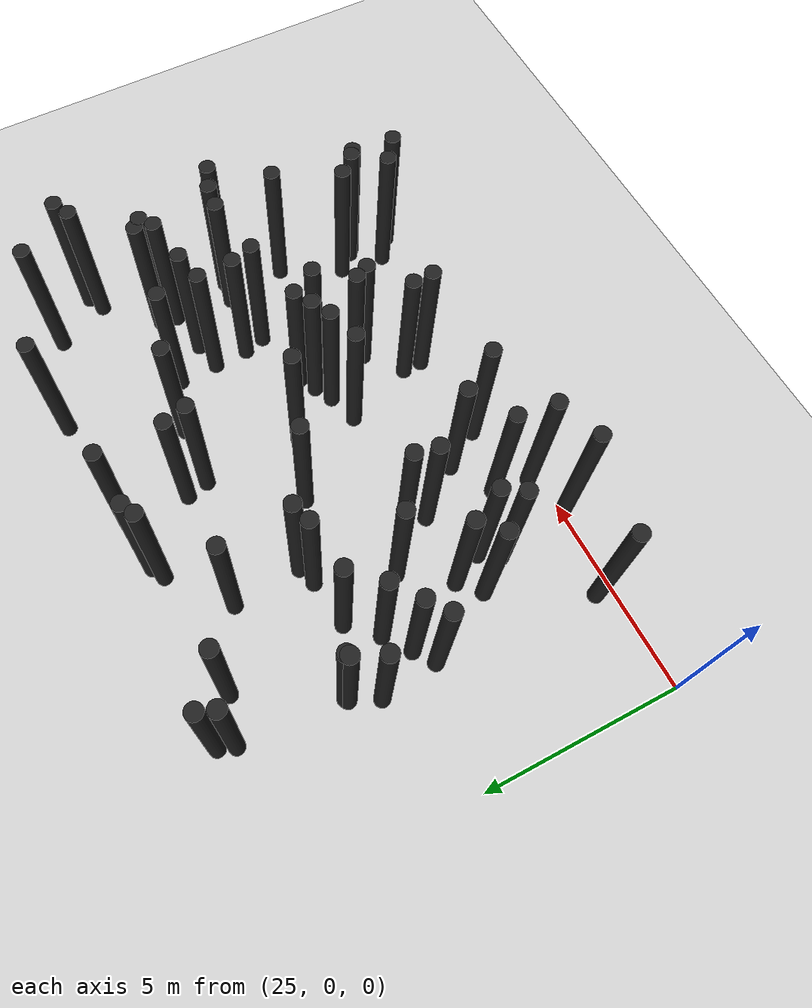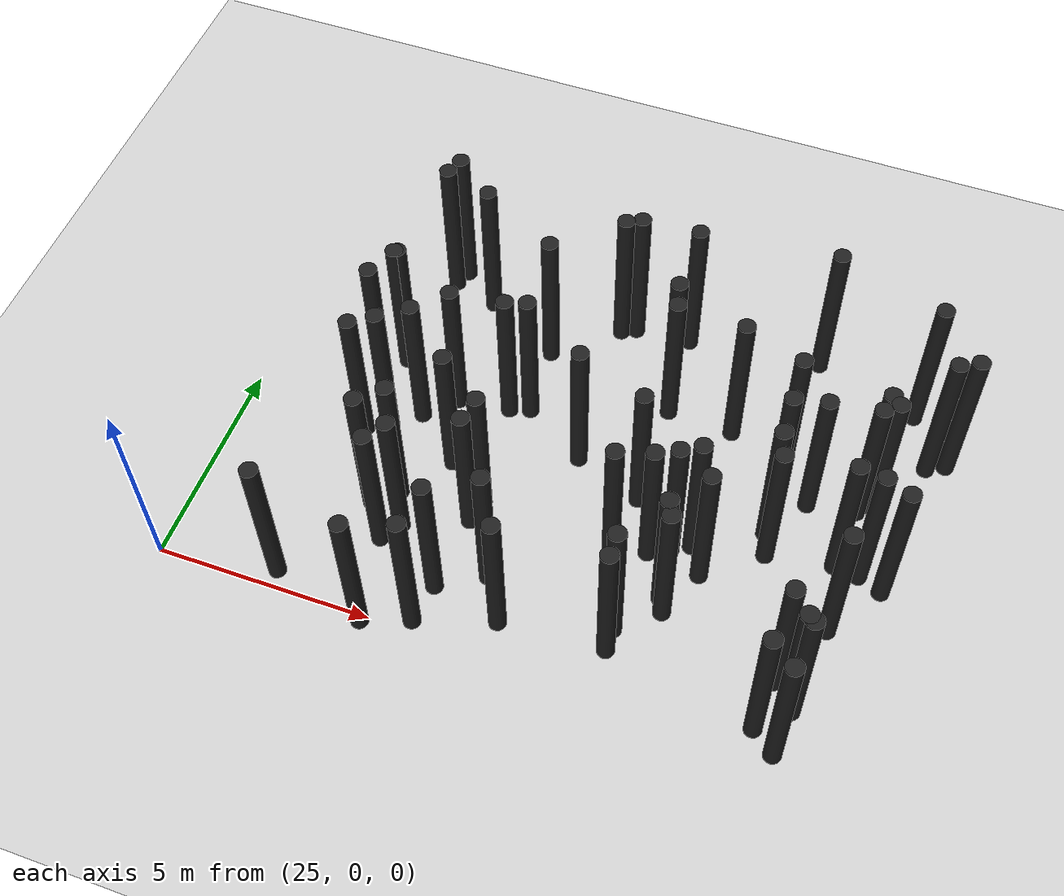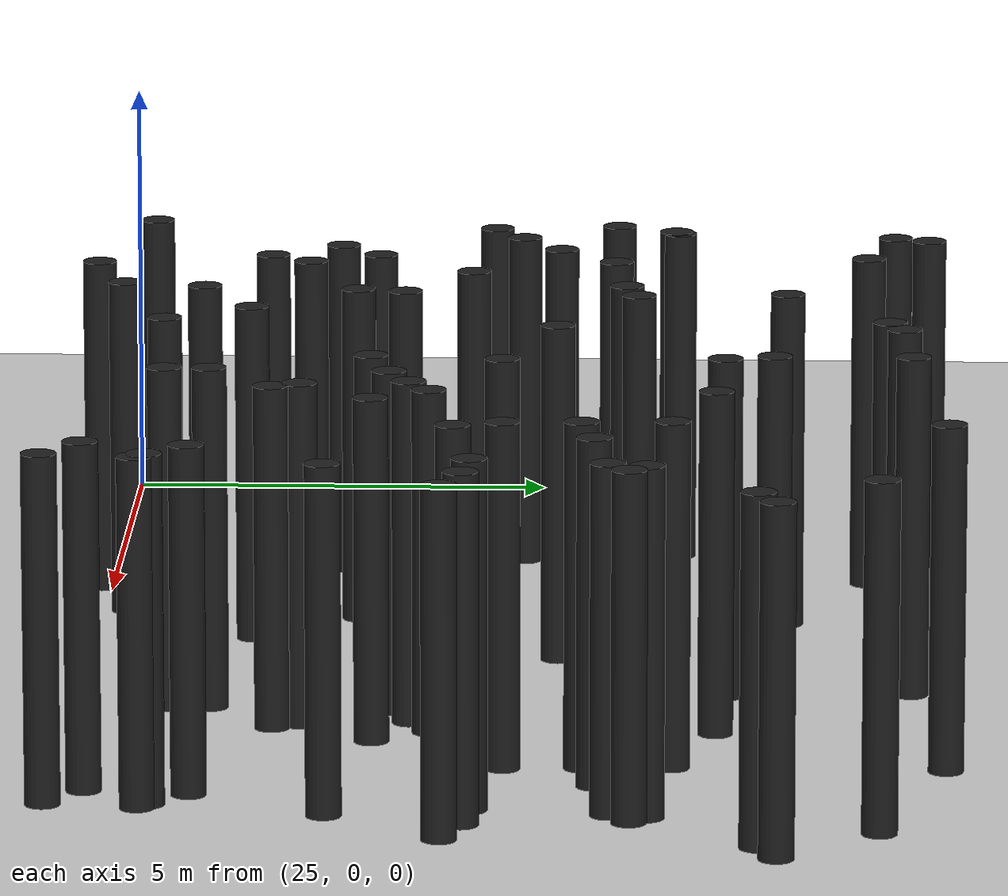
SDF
<sdf version="1.7">
 <world name="default">
  <model name="ground_plane">
   <static>1</static>
   <link name="link">
    <collision name="collision">
     <geometry><plane><normal>0 0 1</normal><size>200 200</size></plane></geometry>
     <surface><friction><ode><mu>100</mu><mu2>50</mu2></ode></friction></surface>
    </collision>
    <visual name="visual">
     <cast_shadows>0</cast_shadows>
     <geometry><plane><normal>0 0 1</normal><size>200 200</size></plane></geometry>
     <material>
      <script><uri>file://media/materials/scripts/gazebo.material</uri><name>Gazebo/Grey</name></script>
     </material>
    </visual>
   </link>
  </model>
  <model name="forest_clone_1_0">
   <pose>38.5834 1.50586 0.00445 0 -0 0</pose>
   <static>1</static>
   <link name="cylinder::link">
    <inertial>
     <mass>1</mass>
     <inertia><ixx>0.083</ixx><ixy>0</ixy><ixz>0</ixz><iyy>0.083</iyy><iyz>0</iyz><izz>0.083</izz></inertia>
    </inertial>
    <collision name="collision">
     <geometry><cylinder><radius>0.2</radius><length>4</length></cylinder></geometry>
    </collision>
    <visual name="visual">
     <geometry><cylinder><radius>0.2</radius><length>4</length></cylinder></geometry>
     <material>
      <script><uri>file://media/materials/scripts/gazebo.material</uri><name>Gazebo/Black</name></script>
     </material>
    </visual>
    <pose>0 0 2 0 -0 0</pose>
   </link>
  </model>
  <model name="forest_clone_4_0">
   <pose>35.8735 2.26879 0.00285 0 -0 0</pose>
   <static>1</static>
   <link name="cylinder::link">
    <inertial>
     <mass>1</mass>
     <inertia><ixx>0.083</ixx><ixy>0</ixy><ixz>0</ixz><iyy>0.083</iyy><iyz>0</iyz><izz>0.083</izz></inertia>
    </inertial>
    <collision name="collision">
     <geometry><cylinder><radius>0.2</radius><length>4</length></cylinder></geometry>
    </collision>
    <visual name="visual">
     <geometry><cylinder><radius>0.2</radius><length>4</length></cylinder></geometry>
     <material>
      <script><uri>file://media/materials/scripts/gazebo.material</uri><name>Gazebo/Black</name></script>
     </material>
    </visual>
    <pose>0 0 2 0 -0 0</pose>
   </link>
  </model>
  <model name="forest_clone_22_0">
   <pose>31.0304 1.21216 -0.00082 0 -0 0</pose>
   <static>1</static>
   <link name="cylinder::link">
    <inertial>
     <mass>1</mass>
     <inertia><ixx>0.083</ixx><ixy>0</ixy><ixz>0</ixz><iyy>0.083</iyy><iyz>0</iyz><izz>0.083</izz></inertia>
    </inertial>
    <collision name="collision">
     <geometry><cylinder><radius>0.2</radius><length>4</length></cylinder></geometry>
    </collision>
    <visual name="visual">
     <geometry><cylinder><radius>0.2</radius><length>4</length></cylinder></geometry>
     <material>
      <script><uri>file://media/materials/scripts/gazebo.material</uri><name>Gazebo/Black</name></script>
     </material>
    </visual>
    <pose>0 0 2 0 -0 0</pose>
   </link>
  </model>
  <model name="forest_clone_24_0">
   <pose>29.3927 8.99702 0.00213 0 -0 0</pose>
   <static>1</static>
   <link name="cylinder::link">
    <inertial>
     <mass>1</mass>
     <inertia><ixx>0.083</ixx><ixy>0</ixy><ixz>0</ixz><iyy>0.083</iyy><iyz>0</iyz><izz>0.083</izz></inertia>
    </inertial>
    <collision name="collision">
     <geometry><cylinder><radius>0.2</radius><length>4</length></cylinder></geometry>
    </collision>
    <visual name="visual">
     <geometry><cylinder><radius>0.2</radius><length>4</length></cylinder></geometry>
     <material>
      <script><uri>file://media/materials/scripts/gazebo.material</uri><name>Gazebo/Black</name></script>
     </material>
    </visual>
    <pose>0 0 2 0 -0 0</pose>
   </link>
  </model>
  <model name="forest_clone_28_0">
   <pose>39.8111 9.13937 0.00124 0 -0 0</pose>
   <static>1</static>
   <link name="cylinder::link">
    <inertial>
     <mass>1</mass>
     <inertia><ixx>0.083</ixx><ixy>0</ixy><ixz>0</ixz><iyy>0.083</iyy><iyz>0</iyz><izz>0.083</izz></inertia>
    </inertial>
    <collision name="collision">
     <geometry><cylinder><radius>0.2</radius><length>4</length></cylinder></geometry>
    </collision>
    <visual name="visual">
     <geometry><cylinder><radius>0.2</radius><length>4</length></cylinder></geometry>
     <material>
      <script><uri>file://media/materials/scripts/gazebo.material</uri><name>Gazebo/Black</name></script>
     </material>
    </visual>
    <pose>0 0 2 0 -0 0</pose>
   </link>
  </model>
  <model name="forest_clone_36_0">
   <pose>28.412 4.88187 -0.00262 0 -0 0</pose>
   <static>1</static>
   <link name="cylinder::link">
    <inertial>
     <mass>1</mass>
     <inertia><ixx>0.083</ixx><ixy>0</ixy><ixz>0</ixz><iyy>0.083</iyy><iyz>0</iyz><izz>0.083</izz></inertia>
    </inertial>
    <collision name="collision">
     <geometry><cylinder><radius>0.2</radius><length>4</length></cylinder></geometry>
    </collision>
    <visual name="visual">
     <geometry><cylinder><radius>0.2</radius><length>4</length></cylinder></geometry>
     <material>
      <script><uri>file://media/materials/scripts/gazebo.material</uri><name>Gazebo/Black</name></script>
     </material>
    </visual>
    <pose>0 0 2 0 -0 0</pose>
   </link>
  </model>
  <model name="forest_clone_40_0">
   <pose>35.9803 4.05859 0.00044 0 -0 0</pose>
   <static>1</static>
   <link name="cylinder::link">
    <inertial>
     <mass>1</mass>
     <inertia><ixx>0.083</ixx><ixy>0</ixy><ixz>0</ixz><iyy>0.083</iyy><iyz>0</iyz><izz>0.083</izz></inertia>
    </inertial>
    <collision name="collision">
     <geometry><cylinder><radius>0.2</radius><length>4</length></cylinder></geometry>
    </collision>
    <visual name="visual">
     <geometry><cylinder><radius>0.2</radius><length>4</length></cylinder></geometry>
     <material>
      <script><uri>file://media/materials/scripts/gazebo.material</uri><name>Gazebo/Black</name></script>
     </material>
    </visual>
    <pose>0 0 2 0 -0 0</pose>
   </link>
  </model>
  <model name="forest_clone_42_0">
   <pose>29.4441 1.92254 0.00434 0 -0 0</pose>
   <static>1</static>
   <link name="cylinder::link">
    <inertial>
     <mass>1</mass>
     <inertia><ixx>0.083</ixx><ixy>0</ixy><ixz>0</ixz><iyy>0.083</iyy><iyz>0</iyz><izz>0.083</izz></inertia>
    </inertial>
    <collision name="collision">
     <geometry><cylinder><radius>0.2</radius><length>4</length></cylinder></geometry>
    </collision>
    <visual name="visual">
     <geometry><cylinder><radius>0.2</radius><length>4</length></cylinder></geometry>
     <material>
      <script><uri>file://media/materials/scripts/gazebo.material</uri><name>Gazebo/Black</name></script>
     </material>
    </visual>
    <pose>0 0 2 0 -0 0</pose>
   </link>
  </model>
  <model name="forest_clone_49_0">
   <pose>38.9766 1.07153 0.00405 0 -0 0</pose>
   <static>1</static>
   <link name="cylinder::link">
    <inertial>
     <mass>1</mass>
     <inertia><ixx>0.083</ixx><ixy>0</ixy><ixz>0</ixz><iyy>0.083</iyy><iyz>0</iyz><izz>0.083</izz></inertia>
    </inertial>
    <collision name="collision">
     <geometry><cylinder><radius>0.2</radius><length>4</length></cylinder></geometry>
    </collision>
    <visual name="visual">
     <geometry><cylinder><radius>0.2</radius><length>4</length></cylinder></geometry>
     <material>
      <script><uri>file://media/materials/scripts/gazebo.material</uri><name>Gazebo/Black</name></script>
     </material>
    </visual>
    <pose>0 0 2 0 -0 0</pose>
   </link>
  </model>
  <model name="forest_clone_54_0">
   <pose>28.2907 9.31701 -0.0016 0 -0 0</pose>
   <static>1</static>
   <link name="cylinder::link">
    <inertial>
     <mass>1</mass>
     <inertia><ixx>0.083</ixx><ixy>0</ixy><ixz>0</ixz><iyy>0.083</iyy><iyz>0</iyz><izz>0.083</izz></inertia>
    </inertial>
    <collision name="collision">
     <geometry><cylinder><radius>0.2</radius><length>4</length></cylinder></geometry>
    </collision>
    <visual name="visual">
     <geometry><cylinder><radius>0.2</radius><length>4</length></cylinder></geometry>
     <material>
      <script><uri>file://media/materials/scripts/gazebo.material</uri><name>Gazebo/Black</name></script>
     </material>
    </visual>
    <pose>0 0 2 0 -0 0</pose>
   </link>
  </model>
  <model name="forest_clone_55_0">
   <pose>31.2421 3.57787 0.00372 0 -0 0</pose>
   <static>1</static>
   <link name="cylinder::link">
    <inertial>
     <mass>1</mass>
     <inertia><ixx>0.083</ixx><ixy>0</ixy><ixz>0</ixz><iyy>0.083</iyy><iyz>0</iyz><izz>0.083</izz></inertia>
    </inertial>
    <collision name="collision">
     <geometry><cylinder><radius>0.2</radius><length>4</length></cylinder></geometry>
    </collision>
    <visual name="visual">
     <geometry><cylinder><radius>0.2</radius><length>4</length></cylinder></geometry>
     <material>
      <script><uri>file://media/materials/scripts/gazebo.material</uri><name>Gazebo/Black</name></script>
     </material>
    </visual>
    <pose>0 0 2 0 -0 0</pose>
   </link>
  </model>
  <model name="forest_clone_58_0">
   <pose>27.9365 4.53378 -0.00232 0 -0 0</pose>
   <static>1</static>
   <link name="cylinder::link">
    <inertial>
     <mass>1</mass>
     <inertia><ixx>0.083</ixx><ixy>0</ixy><ixz>0</ixz><iyy>0.083</iyy><iyz>0</iyz><izz>0.083</izz></inertia>
    </inertial>
    <collision name="collision">
     <geometry><cylinder><radius>0.2</radius><length>4</length></cylinder></geometry>
    </collision>
    <visual name="visual">
     <geometry><cylinder><radius>0.2</radius><length>4</length></cylinder></geometry>
     <material>
      <script><uri>file://media/materials/scripts/gazebo.material</uri><name>Gazebo/Black</name></script>
     </material>
    </visual>
    <pose>0 0 2 0 -0 0</pose>
   </link>
  </model>
  <model name="forest_clone_79_0">
   <pose>34.3939 7.36564 -0.00114 0 -0 0</pose>
   <static>1</static>
   <link name="cylinder::link">
    <inertial>
     <mass>1</mass>
     <inertia><ixx>0.083</ixx><ixy>0</ixy><ixz>0</ixz><iyy>0.083</iyy><iyz>0</iyz><izz>0.083</izz></inertia>
    </inertial>
    <collision name="collision">
     <geometry><cylinder><radius>0.2</radius><length>4</length></cylinder></geometry>
    </collision>
    <visual name="visual">
     <geometry><cylinder><radius>0.2</radius><length>4</length></cylinder></geometry>
     <material>
      <script><uri>file://media/materials/scripts/gazebo.material</uri><name>Gazebo/Black</name></script>
     </material>
    </visual>
    <pose>0 0 2 0 -0 0</pose>
   </link>
  </model>
  <model name="forest_clone_83_0">
   <pose>40.1812 4.34425 -0.00371 0 -0 0</pose>
   <static>1</static>
   <link name="cylinder::link">
    <inertial>
     <mass>1</mass>
     <inertia><ixx>0.083</ixx><ixy>0</ixy><ixz>0</ixz><iyy>0.083</iyy><iyz>0</iyz><izz>0.083</izz></inertia>
    </inertial>
    <collision name="collision">
     <geometry><cylinder><radius>0.2</radius><length>4</length></cylinder></geometry>
    </collision>
    <visual name="visual">
     <geometry><cylinder><radius>0.2</radius><length>4</length></cylinder></geometry>
     <material>
      <script><uri>file://media/materials/scripts/gazebo.material</uri><name>Gazebo/Black</name></script>
     </material>
    </visual>
    <pose>0 0 2 0 -0 0</pose>
   </link>
  </model>
  <model name="forest_clone_84_0">
   <pose>29.8442 -0.115019 0.00017 0 -0 0</pose>
   <static>1</static>
   <link name="cylinder::link">
    <inertial>
     <mass>1</mass>
     <inertia><ixx>0.083</ixx><ixy>0</ixy><ixz>0</ixz><iyy>0.083</iyy><iyz>0</iyz><izz>0.083</izz></inertia>
    </inertial>
    <collision name="collision">
     <geometry><cylinder><radius>0.2</radius><length>4</length></cylinder></geometry>
    </collision>
    <visual name="visual">
     <geometry><cylinder><radius>0.2</radius><length>4</length></cylinder></geometry>
     <material>
      <script><uri>file://media/materials/scripts/gazebo.material</uri><name>Gazebo/Black</name></script>
     </material>
    </visual>
    <pose>0 0 2 0 -0 0</pose>
   </link>
  </model>
  <model name="forest_clone_89_0">
   <pose>29.3763 3.19915 -0.00075 0 -0 0</pose>
   <static>1</static>
   <link name="cylinder::link">
    <inertial>
     <mass>1</mass>
     <inertia><ixx>0.083</ixx><ixy>0</ixy><ixz>0</ixz><iyy>0.083</iyy><iyz>0</iyz><izz>0.083</izz></inertia>
    </inertial>
    <collision name="collision">
     <geometry><cylinder><radius>0.2</radius><length>4</length></cylinder></geometry>
    </collision>
    <visual name="visual">
     <geometry><cylinder><radius>0.2</radius><length>4</length></cylinder></geometry>
     <material>
      <script><uri>file://media/materials/scripts/gazebo.material</uri><name>Gazebo/Black</name></script>
     </material>
    </visual>
    <pose>0 0 2 0 -0 0</pose>
   </link>
  </model>
  <model name="forest_clone_93_0">
   <pose>29.7467 2.38922 0.00296 0 -0 0</pose>
   <static>1</static>
   <link name="cylinder::link">
    <inertial>
     <mass>1</mass>
     <inertia><ixx>0.083</ixx><ixy>0</ixy><ixz>0</ixz><iyy>0.083</iyy><iyz>0</iyz><izz>0.083</izz></inertia>
    </inertial>
    <collision name="collision">
     <geometry><cylinder><radius>0.2</radius><length>4</length></cylinder></geometry>
    </collision>
    <visual name="visual">
     <geometry><cylinder><radius>0.2</radius><length>4</length></cylinder></geometry>
     <material>
      <script><uri>file://media/materials/scripts/gazebo.material</uri><name>Gazebo/Black</name></script>
     </material>
    </visual>
    <pose>0 0 2 0 -0 0</pose>
   </link>
  </model>
  <model name="forest_clone_101_0">
   <pose>37.3682 5.81439 -8e-05 0 -0 0</pose>
   <static>1</static>
   <link name="cylinder::link">
    <inertial>
     <mass>1</mass>
     <inertia><ixx>0.083</ixx><ixy>0</ixy><ixz>0</ixz><iyy>0.083</iyy><iyz>0</iyz><izz>0.083</izz></inertia>
    </inertial>
    <collision name="collision">
     <geometry><cylinder><radius>0.2</radius><length>4</length></cylinder></geometry>
    </collision>
    <visual name="visual">
     <geometry><cylinder><radius>0.2</radius><length>4</length></cylinder></geometry>
     <material>
      <script><uri>file://media/materials/scripts/gazebo.material</uri><name>Gazebo/Black</name></script>
     </material>
    </visual>
    <pose>0 0 2 0 -0 0</pose>
   </link>
  </model>
  <model name="forest_clone_104_0">
   <pose>35.5721 3.81297 -0.00286 0 -0 0</pose>
   <static>1</static>
   <link name="cylinder::link">
    <inertial>
     <mass>1</mass>
     <inertia><ixx>0.083</ixx><ixy>0</ixy><ixz>0</ixz><iyy>0.083</iyy><iyz>0</iyz><izz>0.083</izz></inertia>
    </inertial>
    <collision name="collision">
     <geometry><cylinder><radius>0.2</radius><length>4</length></cylinder></geometry>
    </collision>
    <visual name="visual">
     <geometry><cylinder><radius>0.2</radius><length>4</length></cylinder></geometry>
     <material>
      <script><uri>file://media/materials/scripts/gazebo.material</uri><name>Gazebo/Black</name></script>
     </material>
    </visual>
    <pose>0 0 2 0 -0 0</pose>
   </link>
  </model>
  <model name="forest_clone_128_0">
   <pose>37.4093 4.93717 -0.00184 0 -0 0</pose>
   <static>1</static>
   <link name="cylinder::link">
    <inertial>
     <mass>1</mass>
     <inertia><ixx>0.083</ixx><ixy>0</ixy><ixz>0</ixz><iyy>0.083</iyy><iyz>0</iyz><izz>0.083</izz></inertia>
    </inertial>
    <collision name="collision">
     <geometry><cylinder><radius>0.2</radius><length>4</length></cylinder></geometry>
    </collision>
    <visual name="visual">
     <geometry><cylinder><radius>0.2</radius><length>4</length></cylinder></geometry>
     <material>
      <script><uri>file://media/materials/scripts/gazebo.material</uri><name>Gazebo/Black</name></script>
     </material>
    </visual>
    <pose>0 0 2 0 -0 0</pose>
   </link>
  </model>
  <model name="forest_clone_145_0">
   <pose>39.1852 6.15341 -0.00377 0 -0 0</pose>
   <static>1</static>
   <link name="cylinder::link">
    <inertial>
     <mass>1</mass>
     <inertia><ixx>0.083</ixx><ixy>0</ixy><ixz>0</ixz><iyy>0.083</iyy><iyz>0</iyz><izz>0.083</izz></inertia>
    </inertial>
    <collision name="collision">
     <geometry><cylinder><radius>0.2</radius><length>4</length></cylinder></geometry>
    </collision>
    <visual name="visual">
     <geometry><cylinder><radius>0.2</radius><length>4</length></cylinder></geometry>
     <material>
      <script><uri>file://media/materials/scripts/gazebo.material</uri><name>Gazebo/Black</name></script>
     </material>
    </visual>
    <pose>0 0 2 0 -0 0</pose>
   </link>
  </model>
  <model name="forest_clone_146_0">
   <pose>39.1025 0.97343 0.00014 0 -0 0</pose>
   <static>1</static>
   <link name="cylinder::link">
    <inertial>
     <mass>1</mass>
     <inertia><ixx>0.083</ixx><ixy>0</ixy><ixz>0</ixz><iyy>0.083</iyy><iyz>0</iyz><izz>0.083</izz></inertia>
    </inertial>
    <collision name="collision">
     <geometry><cylinder><radius>0.2</radius><length>4</length></cylinder></geometry>
    </collision>
    <visual name="visual">
     <geometry><cylinder><radius>0.2</radius><length>4</length></cylinder></geometry>
     <material>
      <script><uri>file://media/materials/scripts/gazebo.material</uri><name>Gazebo/Black</name></script>
     </material>
    </visual>
    <pose>0 0 2 0 -0 0</pose>
   </link>
  </model>
  <model name="forest_clone_2_1">
   <pose>29.0342 5.34329 0.00122 0 -0 0</pose>
   <static>1</static>
   <link name="cylinder::link">
    <inertial>
     <mass>1</mass>
     <inertia><ixx>0.083</ixx><ixy>0</ixy><ixz>0</ixz><iyy>0.083</iyy><iyz>0</iyz><izz>0.083</izz></inertia>
    </inertial>
    <collision name="collision">
     <geometry><cylinder><radius>0.2</radius><length>4</length></cylinder></geometry>
    </collision>
    <visual name="visual">
     <geometry><cylinder><radius>0.2</radius><length>4</length></cylinder></geometry>
     <material>
      <script><uri>file://media/materials/scripts/gazebo.material</uri><name>Gazebo/Black</name></script>
     </material>
    </visual>
    <pose>0 0 2 0 -0 0</pose>
   </link>
  </model>
  <model name="forest_clone_5_1">
   <pose>32.5966 9.23963 0.00171 0 -0 0</pose>
   <static>1</static>
   <link name="cylinder::link">
    <inertial>
     <mass>1</mass>
     <inertia><ixx>0.083</ixx><ixy>0</ixy><ixz>0</ixz><iyy>0.083</iyy><iyz>0</iyz><izz>0.083</izz></inertia>
    </inertial>
    <collision name="collision">
     <geometry><cylinder><radius>0.2</radius><length>4</length></cylinder></geometry>
    </collision>
    <visual name="visual">
     <geometry><cylinder><radius>0.2</radius><length>4</length></cylinder></geometry>
     <material>
      <script><uri>file://media/materials/scripts/gazebo.material</uri><name>Gazebo/Black</name></script>
     </material>
    </visual>
    <pose>0 0 2 0 -0 0</pose>
   </link>
  </model>
  <model name="forest_clone_6_1">
   <pose>31.2194 8.04882 -0.00241 0 -0 0</pose>
   <static>1</static>
   <link name="cylinder::link">
    <inertial>
     <mass>1</mass>
     <inertia><ixx>0.083</ixx><ixy>0</ixy><ixz>0</ixz><iyy>0.083</iyy><iyz>0</iyz><izz>0.083</izz></inertia>
    </inertial>
    <collision name="collision">
     <geometry><cylinder><radius>0.2</radius><length>4</length></cylinder></geometry>
    </collision>
    <visual name="visual">
     <geometry><cylinder><radius>0.2</radius><length>4</length></cylinder></geometry>
     <material>
      <script><uri>file://media/materials/scripts/gazebo.material</uri><name>Gazebo/Black</name></script>
     </material>
    </visual>
    <pose>0 0 2 0 -0 0</pose>
   </link>
  </model>
  <model name="forest_clone_11_1">
   <pose>32.6418 0.851636 0.00181 0 -0 0</pose>
   <static>1</static>
   <link name="cylinder::link">
    <inertial>
     <mass>1</mass>
     <inertia><ixx>0.083</ixx><ixy>0</ixy><ixz>0</ixz><iyy>0.083</iyy><iyz>0</iyz><izz>0.083</izz></inertia>
    </inertial>
    <collision name="collision">
     <geometry><cylinder><radius>0.2</radius><length>4</length></cylinder></geometry>
    </collision>
    <visual name="visual">
     <geometry><cylinder><radius>0.2</radius><length>4</length></cylinder></geometry>
     <material>
      <script><uri>file://media/materials/scripts/gazebo.material</uri><name>Gazebo/Black</name></script>
     </material>
    </visual>
    <pose>0 0 2 0 -0 0</pose>
   </link>
  </model>
  <model name="forest_clone_22_1">
   <pose>34.3509 3.32641 -0.00445 0 -0 0</pose>
   <static>1</static>
   <link name="cylinder::link">
    <inertial>
     <mass>1</mass>
     <inertia><ixx>0.083</ixx><ixy>0</ixy><ixz>0</ixz><iyy>0.083</iyy><iyz>0</iyz><izz>0.083</izz></inertia>
    </inertial>
    <collision name="collision">
     <geometry><cylinder><radius>0.2</radius><length>4</length></cylinder></geometry>
    </collision>
    <visual name="visual">
     <geometry><cylinder><radius>0.2</radius><length>4</length></cylinder></geometry>
     <material>
      <script><uri>file://media/materials/scripts/gazebo.material</uri><name>Gazebo/Black</name></script>
     </material>
    </visual>
    <pose>0 0 2 0 -0 0</pose>
   </link>
  </model>
  <model name="forest_clone_31_1">
   <pose>32.9231 9.40899 -0.00195 0 -0 0</pose>
   <static>1</static>
   <link name="cylinder::link">
    <inertial>
     <mass>1</mass>
     <inertia><ixx>0.083</ixx><ixy>0</ixy><ixz>0</ixz><iyy>0.083</iyy><iyz>0</iyz><izz>0.083</izz></inertia>
    </inertial>
    <collision name="collision">
     <geometry><cylinder><radius>0.2</radius><length>4</length></cylinder></geometry>
    </collision>
    <visual name="visual">
     <geometry><cylinder><radius>0.2</radius><length>4</length></cylinder></geometry>
     <material>
      <script><uri>file://media/materials/scripts/gazebo.material</uri><name>Gazebo/Black</name></script>
     </material>
    </visual>
    <pose>0 0 2 0 -0 0</pose>
   </link>
  </model>
  <model name="forest_clone_38_1">
   <pose>35.0146 1.52167 -0.00343 0 -0 0</pose>
   <static>1</static>
   <link name="cylinder::link">
    <inertial>
     <mass>1</mass>
     <inertia><ixx>0.083</ixx><ixy>0</ixy><ixz>0</ixz><iyy>0.083</iyy><iyz>0</iyz><izz>0.083</izz></inertia>
    </inertial>
    <collision name="collision">
     <geometry><cylinder><radius>0.2</radius><length>4</length></cylinder></geometry>
    </collision>
    <visual name="visual">
     <geometry><cylinder><radius>0.2</radius><length>4</length></cylinder></geometry>
     <material>
      <script><uri>file://media/materials/scripts/gazebo.material</uri><name>Gazebo/Black</name></script>
     </material>
    </visual>
    <pose>0 0 2 0 -0 0</pose>
   </link>
  </model>
  <model name="forest_clone_60_1">
   <pose>37.3187 6.82472 -0.00078 0 -0 0</pose>
   <static>1</static>
   <link name="cylinder::link">
    <inertial>
     <mass>1</mass>
     <inertia><ixx>0.083</ixx><ixy>0</ixy><ixz>0</ixz><iyy>0.083</iyy><iyz>0</iyz><izz>0.083</izz></inertia>
    </inertial>
    <collision name="collision">
     <geometry><cylinder><radius>0.2</radius><length>4</length></cylinder></geometry>
    </collision>
    <visual name="visual">
     <geometry><cylinder><radius>0.2</radius><length>4</length></cylinder></geometry>
     <material>
      <script><uri>file://media/materials/scripts/gazebo.material</uri><name>Gazebo/Black</name></script>
     </material>
    </visual>
    <pose>0 0 2 0 -0 0</pose>
   </link>
  </model>
  <model name="forest_clone_64_1">
   <pose>30.9018 0.266778 0.00307 0 -0 0</pose>
   <static>1</static>
   <link name="cylinder::link">
    <inertial>
     <mass>1</mass>
     <inertia><ixx>0.083</ixx><ixy>0</ixy><ixz>0</ixz><iyy>0.083</iyy><iyz>0</iyz><izz>0.083</izz></inertia>
    </inertial>
    <collision name="collision">
     <geometry><cylinder><radius>0.2</radius><length>4</length></cylinder></geometry>
    </collision>
    <visual name="visual">
     <geometry><cylinder><radius>0.2</radius><length>4</length></cylinder></geometry>
     <material>
      <script><uri>file://media/materials/scripts/gazebo.material</uri><name>Gazebo/Black</name></script>
     </material>
    </visual>
    <pose>0 0 2 0 -0 0</pose>
   </link>
  </model>
  <model name="forest_clone_65_1">
   <pose>35.7308 2.5898 0.00354 0 -0 0</pose>
   <static>1</static>
   <link name="cylinder::link">
    <inertial>
     <mass>1</mass>
     <inertia><ixx>0.083</ixx><ixy>0</ixy><ixz>0</ixz><iyy>0.083</iyy><iyz>0</iyz><izz>0.083</izz></inertia>
    </inertial>
    <collision name="collision">
     <geometry><cylinder><radius>0.2</radius><length>4</length></cylinder></geometry>
    </collision>
    <visual name="visual">
     <geometry><cylinder><radius>0.2</radius><length>4</length></cylinder></geometry>
     <material>
      <script><uri>file://media/materials/scripts/gazebo.material</uri><name>Gazebo/Black</name></script>
     </material>
    </visual>
    <pose>0 0 2 0 -0 0</pose>
   </link>
  </model>
  <model name="forest_clone_78_1">
   <pose>40.8031 8.02022 0.00378 0 -0 0</pose>
   <static>1</static>
   <link name="cylinder::link">
    <inertial>
     <mass>1</mass>
     <inertia><ixx>0.083</ixx><ixy>0</ixy><ixz>0</ixz><iyy>0.083</iyy><iyz>0</iyz><izz>0.083</izz></inertia>
    </inertial>
    <collision name="collision">
     <geometry><cylinder><radius>0.2</radius><length>4</length></cylinder></geometry>
    </collision>
    <visual name="visual">
     <geometry><cylinder><radius>0.2</radius><length>4</length></cylinder></geometry>
     <material>
      <script><uri>file://media/materials/scripts/gazebo.material</uri><name>Gazebo/Black</name></script>
     </material>
    </visual>
    <pose>0 0 2 0 -0 0</pose>
   </link>
  </model>
  <model name="forest_clone_83_1">
   <pose>28.1417 6.73029 -0.00438 0 -0 0</pose>
   <static>1</static>
   <link name="cylinder::link">
    <inertial>
     <mass>1</mass>
     <inertia><ixx>0.083</ixx><ixy>0</ixy><ixz>0</ixz><iyy>0.083</iyy><iyz>0</iyz><izz>0.083</izz></inertia>
    </inertial>
    <collision name="collision">
     <geometry><cylinder><radius>0.2</radius><length>4</length></cylinder></geometry>
    </collision>
    <visual name="visual">
     <geometry><cylinder><radius>0.2</radius><length>4</length></cylinder></geometry>
     <material>
      <script><uri>file://media/materials/scripts/gazebo.material</uri><name>Gazebo/Black</name></script>
     </material>
    </visual>
    <pose>0 0 2 0 -0 0</pose>
   </link>
  </model>
  <model name="forest_clone_89_1">
   <pose>28.8796 2.73056 -0.00327 0 -0 0</pose>
   <static>1</static>
   <link name="cylinder::link">
    <inertial>
     <mass>1</mass>
     <inertia><ixx>0.083</ixx><ixy>0</ixy><ixz>0</ixz><iyy>0.083</iyy><iyz>0</iyz><izz>0.083</izz></inertia>
    </inertial>
    <collision name="collision">
     <geometry><cylinder><radius>0.2</radius><length>4</length></cylinder></geometry>
    </collision>
    <visual name="visual">
     <geometry><cylinder><radius>0.2</radius><length>4</length></cylinder></geometry>
     <material>
      <script><uri>file://media/materials/scripts/gazebo.material</uri><name>Gazebo/Black</name></script>
     </material>
    </visual>
    <pose>0 0 2 0 -0 0</pose>
   </link>
  </model>
  <model name="forest_clone_90_1">
   <pose>35.9445 7.28917 0.00295 0 -0 0</pose>
   <static>1</static>
   <link name="cylinder::link">
    <inertial>
     <mass>1</mass>
     <inertia><ixx>0.083</ixx><ixy>0</ixy><ixz>0</ixz><iyy>0.083</iyy><iyz>0</iyz><izz>0.083</izz></inertia>
    </inertial>
    <collision name="collision">
     <geometry><cylinder><radius>0.2</radius><length>4</length></cylinder></geometry>
    </collision>
    <visual name="visual">
     <geometry><cylinder><radius>0.2</radius><length>4</length></cylinder></geometry>
     <material>
      <script><uri>file://media/materials/scripts/gazebo.material</uri><name>Gazebo/Black</name></script>
     </material>
    </visual>
    <pose>0 0 2 0 -0 0</pose>
   </link>
  </model>
  <model name="forest_clone_91_1">
   <pose>35.1142 3.57081 0.00179 0 -0 0</pose>
   <static>1</static>
   <link name="cylinder::link">
    <inertial>
     <mass>1</mass>
     <inertia><ixx>0.083</ixx><ixy>0</ixy><ixz>0</ixz><iyy>0.083</iyy><iyz>0</iyz><izz>0.083</izz></inertia>
    </inertial>
    <collision name="collision">
     <geometry><cylinder><radius>0.2</radius><length>4</length></cylinder></geometry>
    </collision>
    <visual name="visual">
     <geometry><cylinder><radius>0.2</radius><length>4</length></cylinder></geometry>
     <material>
      <script><uri>file://media/materials/scripts/gazebo.material</uri><name>Gazebo/Black</name></script>
     </material>
    </visual>
    <pose>0 0 2 0 -0 0</pose>
   </link>
  </model>
  <model name="forest_clone_96_1">
   <pose>32.0432 1.82387 -0.00388 0 -0 0</pose>
   <static>1</static>
   <link name="cylinder::link">
    <inertial>
     <mass>1</mass>
     <inertia><ixx>0.083</ixx><ixy>0</ixy><ixz>0</ixz><iyy>0.083</iyy><iyz>0</iyz><izz>0.083</izz></inertia>
    </inertial>
    <collision name="collision">
     <geometry><cylinder><radius>0.2</radius><length>4</length></cylinder></geometry>
    </collision>
    <visual name="visual">
     <geometry><cylinder><radius>0.2</radius><length>4</length></cylinder></geometry>
     <material>
      <script><uri>file://media/materials/scripts/gazebo.material</uri><name>Gazebo/Black</name></script>
     </material>
    </visual>
    <pose>0 0 2 0 -0 0</pose>
   </link>
  </model>
  <model name="forest_clone_106_1">
   <pose>27.7694 6.0006 -0.00186 0 -0 0</pose>
   <static>1</static>
   <link name="cylinder::link">
    <inertial>
     <mass>1</mass>
     <inertia><ixx>0.083</ixx><ixy>0</ixy><ixz>0</ixz><iyy>0.083</iyy><iyz>0</iyz><izz>0.083</izz></inertia>
    </inertial>
    <collision name="collision">
     <geometry><cylinder><radius>0.2</radius><length>4</length></cylinder></geometry>
    </collision>
    <visual name="visual">
     <geometry><cylinder><radius>0.2</radius><length>4</length></cylinder></geometry>
     <material>
      <script><uri>file://media/materials/scripts/gazebo.material</uri><name>Gazebo/Black</name></script>
     </material>
    </visual>
    <pose>0 0 2 0 -0 0</pose>
   </link>
  </model>
  <model name="forest_clone_116_1">
   <pose>40.3922 7.8086 0.00407 0 -0 0</pose>
   <static>1</static>
   <link name="cylinder::link">
    <inertial>
     <mass>1</mass>
     <inertia><ixx>0.083</ixx><ixy>0</ixy><ixz>0</ixz><iyy>0.083</iyy><iyz>0</iyz><izz>0.083</izz></inertia>
    </inertial>
    <collision name="collision">
     <geometry><cylinder><radius>0.2</radius><length>4</length></cylinder></geometry>
    </collision>
    <visual name="visual">
     <geometry><cylinder><radius>0.2</radius><length>4</length></cylinder></geometry>
     <material>
      <script><uri>file://media/materials/scripts/gazebo.material</uri><name>Gazebo/Black</name></script>
     </material>
    </visual>
    <pose>0 0 2 0 -0 0</pose>
   </link>
  </model>
  <model name="forest_clone_122_1">
   <pose>39.321 3.03971 -0.00248 0 -0 0</pose>
   <static>1</static>
   <link name="cylinder::link">
    <inertial>
     <mass>1</mass>
     <inertia><ixx>0.083</ixx><ixy>0</ixy><ixz>0</ixz><iyy>0.083</iyy><iyz>0</iyz><izz>0.083</izz></inertia>
    </inertial>
    <collision name="collision">
     <geometry><cylinder><radius>0.2</radius><length>4</length></cylinder></geometry>
    </collision>
    <visual name="visual">
     <geometry><cylinder><radius>0.2</radius><length>4</length></cylinder></geometry>
     <material>
      <script><uri>file://media/materials/scripts/gazebo.material</uri><name>Gazebo/Black</name></script>
     </material>
    </visual>
    <pose>0 0 2 0 -0 0</pose>
   </link>
  </model>
  <model name="forest_clone_126_1">
   <pose>38.0886 5.97335 0.00283 0 -0 0</pose>
   <static>1</static>
   <link name="cylinder::link">
    <inertial>
     <mass>1</mass>
     <inertia><ixx>0.083</ixx><ixy>0</ixy><ixz>0</ixz><iyy>0.083</iyy><iyz>0</iyz><izz>0.083</izz></inertia>
    </inertial>
    <collision name="collision">
     <geometry><cylinder><radius>0.2</radius><length>4</length></cylinder></geometry>
    </collision>
    <visual name="visual">
     <geometry><cylinder><radius>0.2</radius><length>4</length></cylinder></geometry>
     <material>
      <script><uri>file://media/materials/scripts/gazebo.material</uri><name>Gazebo/Black</name></script>
     </material>
    </visual>
    <pose>0 0 2 0 -0 0</pose>
   </link>
  </model>
  <model name="forest_clone_127_1">
   <pose>31.1346 3.02004 -0.00254 0 -0 0</pose>
   <static>1</static>
   <link name="cylinder::link">
    <inertial>
     <mass>1</mass>
     <inertia><ixx>0.083</ixx><ixy>0</ixy><ixz>0</ixz><iyy>0.083</iyy><iyz>0</iyz><izz>0.083</izz></inertia>
    </inertial>
    <collision name="collision">
     <geometry><cylinder><radius>0.2</radius><length>4</length></cylinder></geometry>
    </collision>
    <visual name="visual">
     <geometry><cylinder><radius>0.2</radius><length>4</length></cylinder></geometry>
     <material>
      <script><uri>file://media/materials/scripts/gazebo.material</uri><name>Gazebo/Black</name></script>
     </material>
    </visual>
    <pose>0 0 2 0 -0 0</pose>
   </link>
  </model>
  <model name="forest_clone_133_1">
   <pose>34.4764 4.82788 -0.00447 0 -0 0</pose>
   <static>1</static>
   <link name="cylinder::link">
    <inertial>
     <mass>1</mass>
     <inertia><ixx>0.083</ixx><ixy>0</ixy><ixz>0</ixz><iyy>0.083</iyy><iyz>0</iyz><izz>0.083</izz></inertia>
    </inertial>
    <collision name="collision">
     <geometry><cylinder><radius>0.2</radius><length>4</length></cylinder></geometry>
    </collision>
    <visual name="visual">
     <geometry><cylinder><radius>0.2</radius><length>4</length></cylinder></geometry>
     <material>
      <script><uri>file://media/materials/scripts/gazebo.material</uri><name>Gazebo/Black</name></script>
     </material>
    </visual>
    <pose>0 0 2 0 -0 0</pose>
   </link>
  </model>
  <model name="forest_clone_141_1">
   <pose>34.2366 9.50373 -0.00201 0 -0 0</pose>
   <static>1</static>
   <link name="cylinder::link">
    <inertial>
     <mass>1</mass>
     <inertia><ixx>0.083</ixx><ixy>0</ixy><ixz>0</ixz><iyy>0.083</iyy><iyz>0</iyz><izz>0.083</izz></inertia>
    </inertial>
    <collision name="collision">
     <geometry><cylinder><radius>0.2</radius><length>4</length></cylinder></geometry>
    </collision>
    <visual name="visual">
     <geometry><cylinder><radius>0.2</radius><length>4</length></cylinder></geometry>
     <material>
      <script><uri>file://media/materials/scripts/gazebo.material</uri><name>Gazebo/Black</name></script>
     </material>
    </visual>
    <pose>0 0 2 0 -0 0</pose>
   </link>
  </model>
  <model name="forest_clone_144">
   <pose>38.9996 -0.079691 -0.00154 0 -0 0</pose>
   <static>1</static>
   <link name="cylinder::link">
    <inertial>
     <mass>1</mass>
     <inertia><ixx>0.083</ixx><ixy>0</ixy><ixz>0</ixz><iyy>0.083</iyy><iyz>0</iyz><izz>0.083</izz></inertia>
    </inertial>
    <collision name="collision">
     <geometry><cylinder><radius>0.2</radius><length>4</length></cylinder></geometry>
    </collision>
    <visual name="visual">
     <geometry><cylinder><radius>0.2</radius><length>4</length></cylinder></geometry>
     <material>
      <script><uri>file://media/materials/scripts/gazebo.material</uri><name>Gazebo/Black</name></script>
     </material>
    </visual>
    <pose>0 0 2 0 -0 0</pose>
   </link>
  </model>
  <model name="forest_clone_3_2">
   <pose>30.879 6.16351 0.00073 0 -0 0</pose>
   <static>1</static>
   <link name="cylinder::link">
    <inertial>
     <mass>1</mass>
     <inertia><ixx>0.083</ixx><ixy>0</ixy><ixz>0</ixz><iyy>0.083</iyy><iyz>0</iyz><izz>0.083</izz></inertia>
    </inertial>
    <collision name="collision">
     <geometry><cylinder><radius>0.2</radius><length>4</length></cylinder></geometry>
    </collision>
    <visual name="visual">
     <geometry><cylinder><radius>0.2</radius><length>4</length></cylinder></geometry>
     <material>
      <script><uri>file://media/materials/scripts/gazebo.material</uri><name>Gazebo/Black</name></script>
     </material>
    </visual>
    <pose>0 0 2 0 -0 0</pose>
   </link>
  </model>
  <model name="forest_clone_12_2">
   <pose>36.3512 3.41797 -0.00433 0 -0 0</pose>
   <static>1</static>
   <link name="cylinder::link">
    <inertial>
     <mass>1</mass>
     <inertia><ixx>0.083</ixx><ixy>0</ixy><ixz>0</ixz><iyy>0.083</iyy><iyz>0</iyz><izz>0.083</izz></inertia>
    </inertial>
    <collision name="collision">
     <geometry><cylinder><radius>0.2</radius><length>4</length></cylinder></geometry>
    </collision>
    <visual name="visual">
     <geometry><cylinder><radius>0.2</radius><length>4</length></cylinder></geometry>
     <material>
      <script><uri>file://media/materials/scripts/gazebo.material</uri><name>Gazebo/Black</name></script>
     </material>
    </visual>
    <pose>0 0 2 0 -0 0</pose>
   </link>
  </model>
  <model name="forest_clone_40_2">
   <pose>29.6732 6.00974 0.00295 0 -0 0</pose>
   <static>1</static>
   <link name="cylinder::link">
    <inertial>
     <mass>1</mass>
     <inertia><ixx>0.083</ixx><ixy>0</ixy><ixz>0</ixz><iyy>0.083</iyy><iyz>0</iyz><izz>0.083</izz></inertia>
    </inertial>
    <collision name="collision">
     <geometry><cylinder><radius>0.2</radius><length>4</length></cylinder></geometry>
    </collision>
    <visual name="visual">
     <geometry><cylinder><radius>0.2</radius><length>4</length></cylinder></geometry>
     <material>
      <script><uri>file://media/materials/scripts/gazebo.material</uri><name>Gazebo/Black</name></script>
     </material>
    </visual>
    <pose>0 0 2 0 -0 0</pose>
   </link>
  </model>
  <model name="forest_clone_41_2">
   <pose>39.628 4.56094 0.00139 0 -0 0</pose>
   <static>1</static>
   <link name="cylinder::link">
    <inertial>
     <mass>1</mass>
     <inertia><ixx>0.083</ixx><ixy>0</ixy><ixz>0</ixz><iyy>0.083</iyy><iyz>0</iyz><izz>0.083</izz></inertia>
    </inertial>
    <collision name="collision">
     <geometry><cylinder><radius>0.2</radius><length>4</length></cylinder></geometry>
    </collision>
    <visual name="visual">
     <geometry><cylinder><radius>0.2</radius><length>4</length></cylinder></geometry>
     <material>
      <script><uri>file://media/materials/scripts/gazebo.material</uri><name>Gazebo/Black</name></script>
     </material>
    </visual>
    <pose>0 0 2 0 -0 0</pose>
   </link>
  </model>
  <model name="forest_clone_74_2">
   <pose>34.2528 7.92652 -0.00214 0 -0 0</pose>
   <static>1</static>
   <link name="cylinder::link">
    <inertial>
     <mass>1</mass>
     <inertia><ixx>0.083</ixx><ixy>0</ixy><ixz>0</ixz><iyy>0.083</iyy><iyz>0</iyz><izz>0.083</izz></inertia>
    </inertial>
    <collision name="collision">
     <geometry><cylinder><radius>0.2</radius><length>4</length></cylinder></geometry>
    </collision>
    <visual name="visual">
     <geometry><cylinder><radius>0.2</radius><length>4</length></cylinder></geometry>
     <material>
      <script><uri>file://media/materials/scripts/gazebo.material</uri><name>Gazebo/Black</name></script>
     </material>
    </visual>
    <pose>0 0 2 0 -0 0</pose>
   </link>
  </model>
  <model name="forest_clone_75_2">
   <pose>30.1933 4.34176 -0.00166 0 -0 0</pose>
   <static>1</static>
   <link name="cylinder::link">
    <inertial>
     <mass>1</mass>
     <inertia><ixx>0.083</ixx><ixy>0</ixy><ixz>0</ixz><iyy>0.083</iyy><iyz>0</iyz><izz>0.083</izz></inertia>
    </inertial>
    <collision name="collision">
     <geometry><cylinder><radius>0.2</radius><length>4</length></cylinder></geometry>
    </collision>
    <visual name="visual">
     <geometry><cylinder><radius>0.2</radius><length>4</length></cylinder></geometry>
     <material>
      <script><uri>file://media/materials/scripts/gazebo.material</uri><name>Gazebo/Black</name></script>
     </material>
    </visual>
    <pose>0 0 2 0 -0 0</pose>
   </link>
  </model>
  <model name="forest_clone_81_2">
   <pose>35.0335 1.01256 -0.0005 0 -0 0</pose>
   <static>1</static>
   <link name="cylinder::link">
    <inertial>
     <mass>1</mass>
     <inertia><ixx>0.083</ixx><ixy>0</ixy><ixz>0</ixz><iyy>0.083</iyy><iyz>0</iyz><izz>0.083</izz></inertia>
    </inertial>
    <collision name="collision">
     <geometry><cylinder><radius>0.2</radius><length>4</length></cylinder></geometry>
    </collision>
    <visual name="visual">
     <geometry><cylinder><radius>0.2</radius><length>4</length></cylinder></geometry>
     <material>
      <script><uri>file://media/materials/scripts/gazebo.material</uri><name>Gazebo/Black</name></script>
     </material>
    </visual>
    <pose>0 0 2 0 -0 0</pose>
   </link>
  </model>
  <model name="forest_clone_84_2">
   <pose>31.3452 6.31612 -0.00151 0 -0 0</pose>
   <static>1</static>
   <link name="cylinder::link">
    <inertial>
     <mass>1</mass>
     <inertia><ixx>0.083</ixx><ixy>0</ixy><ixz>0</ixz><iyy>0.083</iyy><iyz>0</iyz><izz>0.083</izz></inertia>
    </inertial>
    <collision name="collision">
     <geometry><cylinder><radius>0.2</radius><length>4</length></cylinder></geometry>
    </collision>
    <visual name="visual">
     <geometry><cylinder><radius>0.2</radius><length>4</length></cylinder></geometry>
     <material>
      <script><uri>file://media/materials/scripts/gazebo.material</uri><name>Gazebo/Black</name></script>
     </material>
    </visual>
    <pose>0 0 2 0 -0 0</pose>
   </link>
  </model>
  <model name="forest_clone_86_2">
   <pose>39.4804 6.39375 -0.00073 0 -0 0</pose>
   <static>1</static>
   <link name="cylinder::link">
    <inertial>
     <mass>1</mass>
     <inertia><ixx>0.083</ixx><ixy>0</ixy><ixz>0</ixz><iyy>0.083</iyy><iyz>0</iyz><izz>0.083</izz></inertia>
    </inertial>
    <collision name="collision">
     <geometry><cylinder><radius>0.2</radius><length>4</length></cylinder></geometry>
    </collision>
    <visual name="visual">
     <geometry><cylinder><radius>0.2</radius><length>4</length></cylinder></geometry>
     <material>
      <script><uri>file://media/materials/scripts/gazebo.material</uri><name>Gazebo/Black</name></script>
     </material>
    </visual>
    <pose>0 0 2 0 -0 0</pose>
   </link>
  </model>
  <model name="forest_clone_95_2">
   <pose>37.5667 4.39184 0.00147 0 -0 0</pose>
   <static>1</static>
   <link name="cylinder::link">
    <inertial>
     <mass>1</mass>
     <inertia><ixx>0.083</ixx><ixy>0</ixy><ixz>0</ixz><iyy>0.083</iyy><iyz>0</iyz><izz>0.083</izz></inertia>
    </inertial>
    <collision name="collision">
     <geometry><cylinder><radius>0.2</radius><length>4</length></cylinder></geometry>
    </collision>
    <visual name="visual">
     <geometry><cylinder><radius>0.2</radius><length>4</length></cylinder></geometry>
     <material>
      <script><uri>file://media/materials/scripts/gazebo.material</uri><name>Gazebo/Black</name></script>
     </material>
    </visual>
    <pose>0 0 2 0 -0 0</pose>
   </link>
  </model>
  <model name="forest_clone_103_2">
   <pose>28.0809 6.69273 0.00458 0 -0 0</pose>
   <static>1</static>
   <link name="cylinder::link">
    <inertial>
     <mass>1</mass>
     <inertia><ixx>0.083</ixx><ixy>0</ixy><ixz>0</ixz><iyy>0.083</iyy><iyz>0</iyz><izz>0.083</izz></inertia>
    </inertial>
    <collision name="collision">
     <geometry><cylinder><radius>0.2</radius><length>4</length></cylinder></geometry>
    </collision>
    <visual name="visual">
     <geometry><cylinder><radius>0.2</radius><length>4</length></cylinder></geometry>
     <material>
      <script><uri>file://media/materials/scripts/gazebo.material</uri><name>Gazebo/Black</name></script>
     </material>
    </visual>
    <pose>0 0 2 0 -0 0</pose>
   </link>
  </model>
  <model name="forest_clone_104_2">
   <pose>39.2779 6.58323 -0.00337 0 -0 0</pose>
   <static>1</static>
   <link name="cylinder::link">
    <inertial>
     <mass>1</mass>
     <inertia><ixx>0.083</ixx><ixy>0</ixy><ixz>0</ixz><iyy>0.083</iyy><iyz>0</iyz><izz>0.083</izz></inertia>
    </inertial>
    <collision name="collision">
     <geometry><cylinder><radius>0.2</radius><length>4</length></cylinder></geometry>
    </collision>
    <visual name="visual">
     <geometry><cylinder><radius>0.2</radius><length>4</length></cylinder></geometry>
     <material>
      <script><uri>file://media/materials/scripts/gazebo.material</uri><name>Gazebo/Black</name></script>
     </material>
    </visual>
    <pose>0 0 2 0 -0 0</pose>
   </link>
  </model>
  <model name="forest_clone_112_2">
   <pose>28.4399 9.7164 -0.00033 0 -0 0</pose>
   <static>1</static>
   <link name="cylinder::link">
    <inertial>
     <mass>1</mass>
     <inertia><ixx>0.083</ixx><ixy>0</ixy><ixz>0</ixz><iyy>0.083</iyy><iyz>0</iyz><izz>0.083</izz></inertia>
    </inertial>
    <collision name="collision">
     <geometry><cylinder><radius>0.2</radius><length>4</length></cylinder></geometry>
    </collision>
    <visual name="visual">
     <geometry><cylinder><radius>0.2</radius><length>4</length></cylinder></geometry>
     <material>
      <script><uri>file://media/materials/scripts/gazebo.material</uri><name>Gazebo/Black</name></script>
     </material>
    </visual>
    <pose>0 0 2 0 -0 0</pose>
   </link>
  </model>
  <model name="forest_clone_113_2">
   <pose>38.4686 0.33292 0.004 0 -0 0</pose>
   <static>1</static>
   <link name="cylinder::link">
    <inertial>
     <mass>1</mass>
     <inertia><ixx>0.083</ixx><ixy>0</ixy><ixz>0</ixz><iyy>0.083</iyy><iyz>0</iyz><izz>0.083</izz></inertia>
    </inertial>
    <collision name="collision">
     <geometry><cylinder><radius>0.2</radius><length>4</length></cylinder></geometry>
    </collision>
    <visual name="visual">
     <geometry><cylinder><radius>0.2</radius><length>4</length></cylinder></geometry>
     <material>
      <script><uri>file://media/materials/scripts/gazebo.material</uri><name>Gazebo/Black</name></script>
     </material>
    </visual>
    <pose>0 0 2 0 -0 0</pose>
   </link>
  </model>
  <model name="forest_clone_114_2">
   <pose>39.0579 4.63221 0.00258 0 -0 0</pose>
   <static>1</static>
   <link name="cylinder::link">
    <inertial>
     <mass>1</mass>
     <inertia><ixx>0.083</ixx><ixy>0</ixy><ixz>0</ixz><iyy>0.083</iyy><iyz>0</iyz><izz>0.083</izz></inertia>
    </inertial>
    <collision name="collision">
     <geometry><cylinder><radius>0.2</radius><length>4</length></cylinder></geometry>
    </collision>
    <visual name="visual">
     <geometry><cylinder><radius>0.2</radius><length>4</length></cylinder></geometry>
     <material>
      <script><uri>file://media/materials/scripts/gazebo.material</uri><name>Gazebo/Black</name></script>
     </material>
    </visual>
    <pose>0 0 2 0 -0 0</pose>
   </link>
  </model>
  <model name="forest_clone_121_2">
   <pose>37.3559 9.88279 0.00049 0 -0 0</pose>
   <static>1</static>
   <link name="cylinder::link">
    <inertial>
     <mass>1</mass>
     <inertia><ixx>0.083</ixx><ixy>0</ixy><ixz>0</ixz><iyy>0.083</iyy><iyz>0</iyz><izz>0.083</izz></inertia>
    </inertial>
    <collision name="collision">
     <geometry><cylinder><radius>0.2</radius><length>4</length></cylinder></geometry>
    </collision>
    <visual name="visual">
     <geometry><cylinder><radius>0.2</radius><length>4</length></cylinder></geometry>
     <material>
      <script><uri>file://media/materials/scripts/gazebo.material</uri><name>Gazebo/Black</name></script>
     </material>
    </visual>
    <pose>0 0 2 0 -0 0</pose>
   </link>
  </model>
  <model name="forest_clone_84_0_clone">
   <pose>27.6484 0.41947 0.00017 0 -0 0</pose>
   <static>1</static>
   <link name="cylinder::link">
    <inertial>
     <mass>1</mass>
     <inertia><ixx>0.083</ixx><ixy>0</ixy><ixz>0</ixz><iyy>0.083</iyy><iyz>0</iyz><izz>0.083</izz></inertia>
    </inertial>
    <collision name="collision">
     <geometry><cylinder><radius>0.2</radius><length>4</length></cylinder></geometry>
    </collision>
    <visual name="visual">
     <geometry><cylinder><radius>0.2</radius><length>4</length></cylinder></geometry>
     <material>
      <script><uri>file://media/materials/scripts/gazebo.material</uri><name>Gazebo/Black</name></script>
     </material>
    </visual>
    <pose>0 0 2 0 -0 0</pose>
   </link>
  </model>
  <model name="forest_clone_84_0_clone_0">
   <pose>32.8621 5.41536 0.00017 0 -0 0</pose>
   <static>1</static>
   <link name="cylinder::link">
    <inertial>
     <mass>1</mass>
     <inertia><ixx>0.083</ixx><ixy>0</ixy><ixz>0</ixz><iyy>0.083</iyy><iyz>0</iyz><izz>0.083</izz></inertia>
    </inertial>
    <collision name="collision">
     <geometry><cylinder><radius>0.2</radius><length>4</length></cylinder></geometry>
    </collision>
    <visual name="visual">
     <geometry><cylinder><radius>0.2</radius><length>4</length></cylinder></geometry>
     <material>
      <script><uri>file://media/materials/scripts/gazebo.material</uri><name>Gazebo/Black</name></script>
     </material>
    </visual>
    <pose>0 0 2 0 -0 0</pose>
   </link>
  </model>
 </world>
</sdf>
